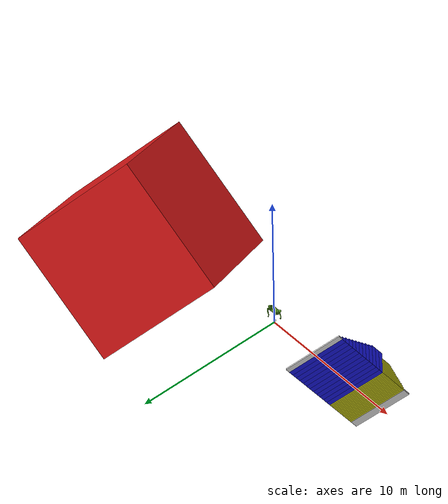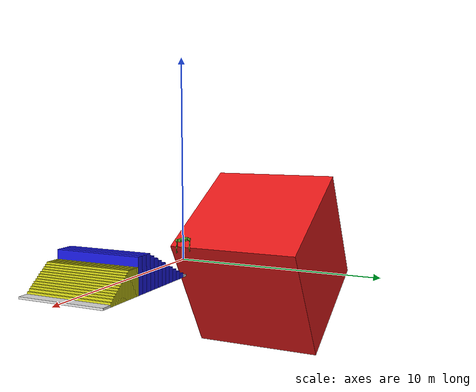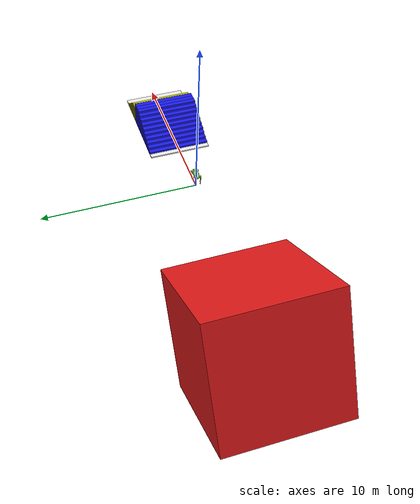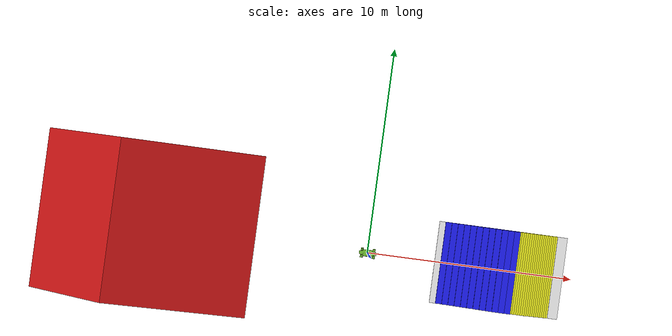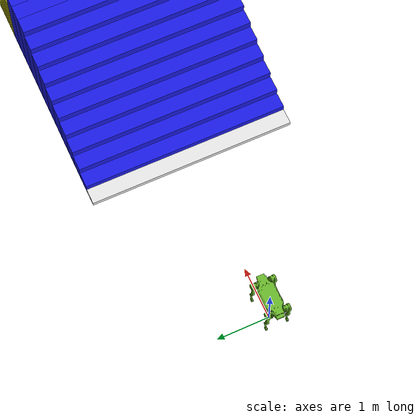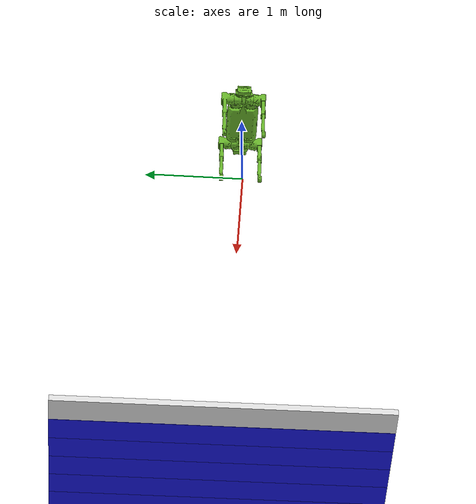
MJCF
<mujoco model="JueyingX20V2">
  <compiler angle="radian" meshdir="assets" autolimits="true"/>

  <option timestep="0.001" cone="elliptic" impratio="100"/>

  <default>
    <default class="x20">
      <geom friction="0.8" margin="0.001" condim="1"/>
      <joint damping="2" armature="0.01" frictionloss="0.2"/>
      <default class="m_abduction">
        <motor group="0" ctrlrange ="-100 100"/>
      </default>
      <default class="m_hip">
        <motor group="0" ctrlrange ="-100 100"/>
      </default>
      <default class="m_knee">
        <motor group="0" ctrlrange="-160 160"/>
      </default>
      <default class="p_abduction">
        <position  group="1" ctrlrange="-0.496 0.496" kp="350" forcerange="-100 100"/>
      </default>
      <default class="p_hip">
        <position  group="1" ctrlrange="-2.79 0.257" kp="350" forcerange="-100 100"/>
      </default>
      <default class="p_knee">
        <position  group="1" ctrlrange="0.35 2.48" kp="350" forcerange="-160 160"/>
      </default>
      <default class="visual">
        <geom type="mesh" contype="0" conaffinity="0" group="2" material="dark"/>
      </default>
      <default class="collision">
        <geom contype="1" group="3" type="capsule"/>
        <default class="foot">
          <geom type="sphere" size="0.038" priority="1" solimp="0.015 1 0.031" condim="6"
            friction="0.8 0.02 0.01"/>
        </default>
      </default>
    </default>
  </default>

  <asset>
    <material name="dark" rgba="0.4157 0.7216 0.1725 1.00"/>
    <mesh name= "Torso" file="Torso.stl"/>
    <mesh name= "Shank" file="Shank.stl"/>
    <mesh name= "FL_Hip" file="FL_Hip.stl"/>
    <mesh name= "FR_Hip" file="FR_Hip.stl"/>
    <mesh name= "HL_Hip" file="HL_Hip.stl"/>
    <mesh name= "HR_Hip" file="HR_Hip.stl"/>
    <mesh name= "L_Thigh" file="L_Thigh.stl"/>
    <mesh name= "R_Thigh" file="R_Thigh.stl"/>
  </asset>

  <worldbody>
    <light name="spotlight" mode="targetbodycom" target="trunk" pos="0 -1 2"/>
    <body name="trunk" pos="0 0 1.0" childclass="x20">
      <camera name="tracking" mode="trackcom" pos="0 -1 0.8" xyaxes="1 0 0 0 1 1"/>
      <inertial pos="0.0049299 0.00041299 0.0040884" mass="26.398" fullinertia= "0.1632 0.40648  0.52596 -5.2136E-05 -0.00019406 8.2679E-05"/>
      <geom class="visual" mesh="Torso"/>
      <geom class="collision" size="0.23 0.13 0.075" type="box"/>
      <geom class="collision" pos="0.3 0 0" size="0.1 0.08 0.05" type="box"/>
      <geom class="collision" pos="-0.3 0 0" size="0.1 0.08 0.05" type="box"/>
      <freejoint/>
      <site name="imu" pos="0 0 0"/>
      <body name="FL_HIP" pos="0.292 0.08 0">
        <inertial pos="-0.00075689 -0.0089129 -5.0528e-05" quat="0.495032 0.511341 0.499437 0.494001" mass="1.5767" diaginertia="0.00169132 0.00134312 0.00121396"/>
        <geom class="visual" mesh="FL_Hip"/>
        <joint name="FL_HipX_joint" axis="-1 0 0" range="-0.496 0.496"/>
        <body name="FL_THIGH" pos="0 0.12325 0">
          <inertial pos="-0.0025263 -0.022118 -0.0292" quat="0.713762 -0.00543186 0.00617568 0.70034" mass="3.0063" diaginertia="0.00807054 0.00580939 0.00387287"/>
          <geom class="visual" mesh="L_Thigh"/>
          <geom class="collision" size="0.04 0.125" pos="-0.02 0 -0.13" type="cylinder"/>
          <joint name="FL_HipY_joint" axis="0 -1 0" range="-2.79 0.257"/>
          <body name="FL_SHANK" pos="0 0 -0.3">
            <inertial pos="0.00640548 0.000182102 -0.178647" quat="0.708959 -0.00659071 -0.00825847 0.705171" mass="0.66332" diaginertia="0.0069659 0.00674831 0.00031262"/>
            <geom class="visual" mesh="Shank"/>
            <geom class="collision" size="0.025 0.11" pos="0 0 -0.155" type="cylinder"/>
            <joint name="FL_Knee_joint" axis="0 -1 0" range="0.35 2.48"/>
            <geom name="FL" class="foot" pos="0 0.002 -0.31"/>
          </body>
        </body>
      </body>
      <body name="FR_HIP" pos="0.292 -0.08 0">
        <inertial pos="-0.00075689 0.0089129 5.0528e-05" quat="0.499437 0.494001 0.495032 0.511341" mass="1.5767" diaginertia="0.00169132 0.00134312 0.00121396"/>
        <geom class="visual" mesh="FR_Hip"/>
        <joint name="FR_HipX_joint" axis="-1 0 0" range="-0.496 0.496"/>
        <body name="FR_THIGH" pos="0 -0.12325 0">
          <inertial pos="-0.0025266 0.022119 -0.029194" quat="0.70035 0.00617446 -0.00542039 0.713752" mass="3.0062" diaginertia="0.00807034 0.00580919 0.00387277"/>
          <geom class="visual" mesh="R_Thigh"/>
          <joint name="FR_HipY_joint" axis="0 -1 0" range="-2.79 0.257"/>
          <geom class="collision" size="0.04 0.125" pos="-0.02 0 -0.13" type="cylinder"/>
          <body name="FR_SHANK" pos="0 0 -0.3">
            <inertial pos="0.00640548 -0.000179714 -0.178647" quat="0.705323 -0.00842938 -0.0064193 0.708807" mass="0.66332" diaginertia="0.00696592 0.00674831 0.000312604"/>
            <geom class="visual" mesh="Shank"/>
            <joint name="FR_Knee_joint" axis="0 -1 0" range="0.35 2.48"/>
            <geom class="collision" size="0.025 0.11" pos="0 0 -0.155" type="cylinder"/>
            <geom name="FR" class="foot" pos="0 -0.002 -0.31"/>
          </body>
        </body>
      </body>
      <body name="HL_HIP" pos="-0.292 0.08 0">
        <inertial pos="0.00075689 -0.0089129 5.0528e-05" quat="0.494001 0.499437 0.511341 0.495032" mass="1.5767" diaginertia="0.00169132 0.00134312 0.00121396"/>
        <geom class="visual" mesh="HL_Hip"/>
        <joint name="HL_HipX_joint" axis="-1 0 0" range="-0.496 0.496"/>
        <body name="HL_THIGH" pos="0 0.12325 0">
          <inertial pos="-0.0025264 -0.022118 -0.0292" quat="0.713762 -0.00543177 0.00617594 0.70034" mass="3.0063" diaginertia="0.00807055 0.00580939 0.00387287"/>
          <geom class="visual" mesh="L_Thigh"/>
          <joint name="HL_HipY_joint" axis="0 -1 0" range="-2.79 0.257"/>
          <geom class="collision" size="0.04 0.125" pos="-0.02 0 -0.13" type="cylinder"/>
          <body name="HL_SHANK" pos="0 0 -0.3">
            <inertial pos="0.00640548 0.000180908 -0.178647" quat="0.70896 -0.00659011 -0.00825908 0.70517" mass="0.66332" diaginertia="0.0069659 0.00674831 0.00031262"/>
            <geom class="visual" mesh="Shank"/>
            <joint name="HL_Knee_joint" axis="0 -1 0" range="0.35 2.48"/>
            <geom class="collision" size="0.025 0.11" pos="0 0 -0.155" type="cylinder"/>
            <geom name="HL" class="foot" pos="0 0.002 -0.31"/>
          </body>
        </body>
      </body>
      <body name="HR_HIP" pos="-0.292 -0.08 0">
        <inertial pos="0.00075689 0.0089129 -5.0528e-05" quat="0.511341 0.495032 0.494001 0.499437" mass="1.5767" diaginertia="0.00169132 0.00134312 0.00121396"/>
        <geom class="visual" mesh="HR_Hip"/>
        <joint name="HR_HipX_joint" axis="-1 0 0" range="-0.496 0.496"/>
        <body name="HR_THIGH" pos="0 -0.12325 0">
          <inertial pos="-0.0025266 0.022119 -0.029194" quat="0.70035 0.00617457 -0.00542028 0.713752" mass="3.0062" diaginertia="0.00807034 0.00580919 0.00387277"/>
          <geom class="visual" mesh="R_Thigh"/>
          <joint name="HR_HipY_joint" axis="0 -1 0" range="-2.79 0.257"/>
          <geom class="collision" size="0.04 0.125" pos="-0.02 0 -0.13" type="cylinder"/>
          <body name="HR_SHANK" pos="0 0 -0.3">
            <inertial pos="0.00640548 -0.000180908 -0.178647" quat="0.705324 -0.00842878 -0.00641991 0.708806" mass="0.66332" diaginertia="0.00696592 0.00674831 0.000312604"/>
            <geom class="visual" mesh="Shank"/>
            <joint name="HR_Knee_joint" axis="0 -1 0" range="0.35 2.48"/>
            <geom class="collision" size="0.025 0.11" pos="0 0 -0.155" type="cylinder"/>
            <geom name="HR" class="foot" pos="0 -0.002 -0.31"/>
          </body>
        </body>
      </body>
    </body>

    <body name="staircase" pos="3.45 0 0" euler="0 0 0">
      <inertial pos="0 0 0" quat="0 0 0 1" mass="1000" diaginertia="0.033260231 0.16117211 0.17460442"/>
      <geom contype="1" condim="3" friction="0.7 0.005 0.0001" type="box" pos="0 0 0.0475" size="0.15 2 0.045" rgba="0.9 0.9 0.9 1.0"/>
      <geom contype="1" condim="3" friction="0.7 0.005 0.0001" type="box" pos="0.30 0 0.11" size="0.15 2 0.11" rgba="0.1 0.1 0.9 1.0"/>
      <geom contype="1" condim="3" friction="0.7 0.005 0.0001" type="box" pos="0.60 0 0.185" size="0.15 2 0.185" rgba="0.1 0.1 0.9 1.0"/>
      <geom contype="1" condim="3" friction="0.7 0.005 0.0001" type="box" pos="0.90 0 0.26" size="0.15 2 0.26" rgba="0.1 0.1 0.9 1.0"/>
      <geom contype="1" condim="3" friction="0.7 0.005 0.0001" type="box" pos="1.20 0 0.335" size="0.15 2 0.335" rgba="0.1 0.1 0.9 1.0"/>
      <geom contype="1" condim="3" friction="0.7 0.005 0.0001" type="box" pos="1.50 0 0.41" size="0.15 2 0.41" rgba="0.1 0.1 0.9 1.0"/>
      <geom contype="1" condim="3" friction="0.7 0.005 0.0001" type="box" pos="1.80 0 0.485" size="0.15 2 0.485" rgba="0.1 0.1 0.9 1.0"/>
      <geom contype="1" condim="3" friction="0.7 0.005 0.0001" type="box" pos="2.10 0 0.56" size="0.15 2 0.56" rgba="0.1 0.1 0.9 1.0"/>
      <geom contype="1" condim="3" friction="0.7 0.005 0.0001" type="box" pos="2.40 0 0.635" size="0.15 2 0.635" rgba="0.1 0.1 0.9 1.0"/>
      <geom contype="1" condim="3" friction="0.7 0.005 0.0001" type="box" pos="2.70 0 0.71" size="0.15 2 0.71" rgba="0.1 0.1 0.9 1.0"/>
      <geom contype="1" condim="3" friction="0.7 0.005 0.0001" type="box" pos="3.00 0 0.785" size="0.15 2 0.785" rgba="0.1 0.1 0.9 1.0"/>
      <geom contype="1" condim="3" friction="0.7 0.005 0.0001" type="box" pos="3.30 0 0.785" size="0.15 2 0.785" rgba="0.1 0.1 0.9 1.0"/>
      <geom contype="1" condim="3" friction="0.7 0.005 0.0001" type="box" pos="3.60 0 0.785" size="0.15 2 0.785" rgba="0.1 0.1 0.9 1.0"/>
  </body>

  <body name="staircase_sym" pos="9.35 0 0" euler="0 0 3.1415926">
      <inertial pos="0 0 0" quat="0 0 0 1" mass="1000" diaginertia="0.033260231 0.16117211 0.17460442"/>
      <geom contype="1" condim="3" friction="0.7 0.005 0.0001" type="box" pos="0 0 0.0475" size="0.24 2 0.045" rgba="0.9 0.9 0.9 1.0"/>
      <geom contype="1" condim="3" friction="0.7 0.005 0.0001" type="box" pos="0.30 0 0.09" size="0.05 2 0.09" rgba="0.9 0.9 0.1 1.0"/>
      <geom contype="1" condim="3" friction="0.7 0.005 0.0001" type="box" pos="0.4 0 0.14" size="0.05 2 0.14" rgba="0.9 0.9 0.1 1.0"/>
      <geom contype="1" condim="3" friction="0.7 0.005 0.0001" type="box" pos="0.5 0 0.18" size="0.05 2 0.18" rgba="0.9 0.9 0.1 1.0"/>
      <geom contype="1" condim="3" friction="0.7 0.005 0.0001" type="box" pos="0.6 0 0.22" size="0.05 2 0.22" rgba="0.9 0.9 0.1 1.0"/>
      <geom contype="1" condim="3" friction="0.7 0.005 0.0001" type="box" pos="0.7 0 0.26" size="0.05 2 0.26" rgba="0.9 0.9 0.1 1.0"/>
      <geom contype="1" condim="3" friction="0.7 0.005 0.0001" type="box" pos="0.8 0 0.30" size="0.05 2 0.30" rgba="0.9 0.9 0.1 1.0"/>
      <geom contype="1" condim="3" friction="0.7 0.005 0.0001" type="box" pos="0.9 0 0.34" size="0.05 2 0.34" rgba="0.9 0.9 0.1 1.0"/>
      <geom contype="1" condim="3" friction="0.7 0.005 0.0001" type="box" pos="1.0 0 0.38" size="0.05 2 0.38" rgba="0.9 0.9 0.1 1.0"/>
      <geom contype="1" condim="3" friction="0.7 0.005 0.0001" type="box" pos="1.1 0 0.42" size="0.05 2 0.42" rgba="0.9 0.9 0.1 1.0"/>
      <geom contype="1" condim="3" friction="0.7 0.005 0.0001" type="box" pos="1.2 0 0.46" size="0.05 2 0.46" rgba="0.9 0.9 0.1 1.0"/>
      <geom contype="1" condim="3" friction="0.7 0.005 0.0001" type="box" pos="1.3 0 0.50" size="0.05 2 0.50" rgba="0.9 0.9 0.1 1.0"/>
      <geom contype="1" condim="3" friction="0.7 0.005 0.0001" type="box" pos="1.4 0 0.54" size="0.05 2 0.54" rgba="0.9 0.9 0.1 1.0"/>
      <geom contype="1" condim="3" friction="0.7 0.005 0.0001" type="box" pos="1.5 0 0.58" size="0.05 2 0.58" rgba="0.9 0.9 0.1 1.0"/>
      <geom contype="1" condim="3" friction="0.7 0.005 0.0001" type="box" pos="1.6 0 0.58" size="0.05 2 0.58" rgba="0.9 0.9 0.1 1.0"/>
      <geom contype="1" condim="3" friction="0.7 0.005 0.0001" type="box" pos="1.7 0 0.58" size="0.05 2 0.58" rgba="0.9 0.9 0.1 1.0"/>
      <geom contype="1" condim="3" friction="0.7 0.005 0.0001" type="box" pos="1.8 0 0.58" size="0.05 2 0.58" rgba="0.9 0.9 0.1 1.0"/>
      <geom contype="1" condim="3" friction="0.7 0.005 0.0001" type="box" pos="1.9 0 0.58" size="0.05 2 0.58" rgba="0.9 0.9 0.1 1.0"/>
      <geom contype="1" condim="3" friction="0.7 0.005 0.0001" type="box" pos="2.0 0 0.58" size="0.05 2 0.58" rgba="0.9 0.9 0.1 1.0"/>
      <geom contype="1" condim="3" friction="0.7 0.005 0.0001" type="box" pos="2.1 0 0.58" size="0.05 2 0.58" rgba="0.9 0.9 0.1 1.0"/>

  </body>

    <body name="30degslope" pos="-11 0 -2" euler="0 -1.0472 0">
      <inertial pos="0 0 0" quat="0 0 0 1" mass="1000" diaginertia="0.033260231 0.16117211 0.17460442"/>
      <geom contype="1" condim="3" friction="0.7 0.005 0.0001" type="box" pos="0 0 0" size="4 4 4" rgba="0.9 0.1 0.1 1.0"/>
    </body>

  </worldbody>

  <actuator>
    <motor class="m_abduction" name="m_FL_hip" joint="FL_HipX_joint"/>
    <motor class="m_hip" name="m_FL_thigh" joint="FL_HipY_joint"/>
    <motor class="m_knee" name="m_FL_calf" joint="FL_Knee_joint"/>
    <motor class="m_abduction" name="m_FR_hip" joint="FR_HipX_joint"/>
    <motor class="m_hip" name="m_FR_thigh" joint="FR_HipY_joint"/>
    <motor class="m_knee" name="m_FR_calf" joint="FR_Knee_joint"/>
    <motor class="m_abduction" name="m_HL_hip" joint="HL_HipX_joint"/>
    <motor class="m_hip" name="m_HL_thigh" joint="HL_HipY_joint"/>
    <motor class="m_knee" name="m_HL_calf" joint="HL_Knee_joint"/>
    <motor class="m_abduction" name="m_HR_hip" joint="HR_HipX_joint"/>
    <motor class="m_hip" name="m_HR_thigh" joint="HR_HipY_joint"/>
    <motor class="m_knee" name="m_HR_calf" joint="HR_Knee_joint"/>
    <position class="p_abduction" name="p_FL_hip" joint="FL_HipX_joint"/>
    <position class="p_hip" name="p_FL_thigh" joint="FL_HipY_joint"/>
    <position class="p_knee" name="p_FL_calf" joint="FL_Knee_joint"/>
    <position class="p_abduction" name="p_FR_hip" joint="FR_HipX_joint"/>
    <position class="p_hip" name="p_FR_thigh" joint="FR_HipY_joint"/>
    <position class="p_knee" name="p_FR_calf" joint="FR_Knee_joint"/>
    <position class="p_abduction" name="p_HL_hip" joint="HL_HipX_joint"/>
    <position class="p_hip" name="p_HL_thigh" joint="HL_HipY_joint"/>
    <position class="p_knee" name="p_HL_calf" joint="HL_Knee_joint"/>
    <position class="p_abduction" name="p_HR_hip" joint="HR_HipX_joint"/>
    <position class="p_hip" name="p_HR_thigh" joint="HR_HipY_joint"/>
    <position class="p_knee" name="p_HR_calf" joint="HR_Knee_joint"/>
  </actuator>

  <sensor>
    <gyro name="body_gyro" site="imu"/>
    <accelerometer name="body_linacc" site="imu"/>
    <framequat name="body_quat" objtype="site" objname="imu"/>
  </sensor>

  <keyframe>
    <key name="home" qpos="0 0 0.521 1 0 0 0 0 -0.7330 1.3614 0 -0.7330 1.3614 0 -0.7330 1.3614 0 -0.7330 1.3614"/>
  </keyframe>
</mujoco>
